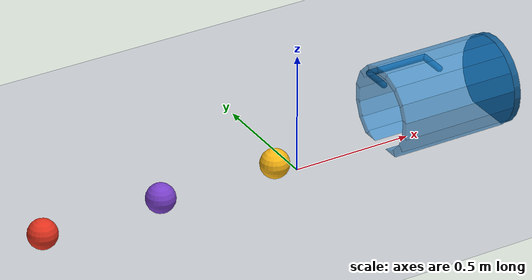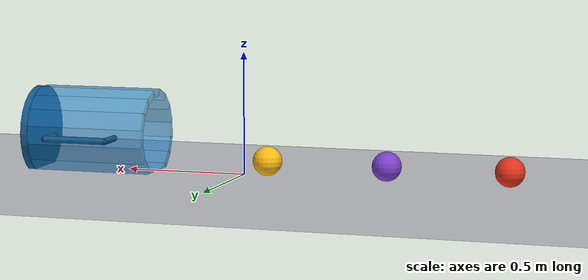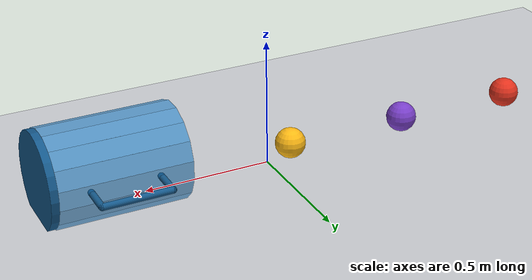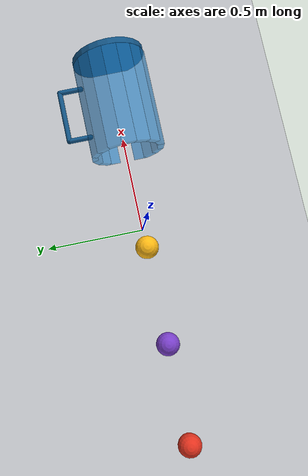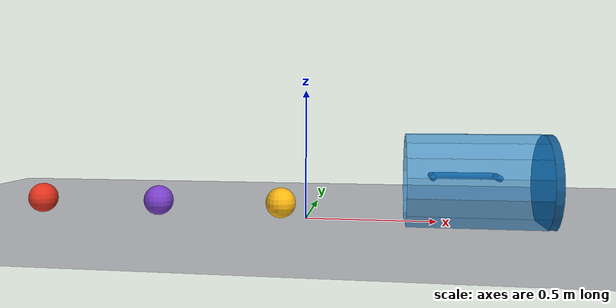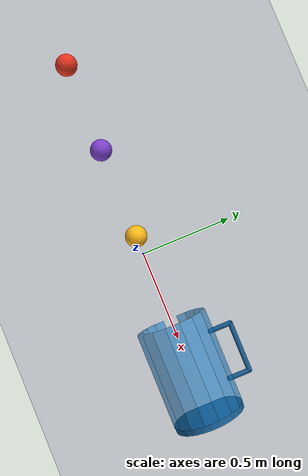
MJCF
<mujoco model="three_balls_into_cup">
  <compiler angle="degree"/>
  <option timestep="0.002" gravity="0 0 -9.81" integrator="implicitfast" cone="elliptic" iterations="100"/>
  <statistic center="-0.15 0 0.12" extent="1.6"/>

  <visual>
    <global offwidth="1280" offheight="720"/>
    <headlight ambient="0.35 0.35 0.35" diffuse="0.65 0.65 0.65" specular="0.2 0.2 0.2"/>
  </visual>

  <worldbody>
    <light name="key_light" pos="-1 -2 3" dir="0 0 -1" diffuse="0.8 0.8 0.8"/>
    <camera name="overview" pos="-0.3 -2.8 1.65" xyaxes="1 0 0 0 0.47 0.883" fovy="40"/>
    <geom name="floor" type="plane" pos="0 0 0" size="3 2 0.1" rgba="0.78 0.79 0.81 1" condim="6" priority="1" friction="0.6 0.001 0.002" solref="0.006 1"/>

    <body name="ball1" pos="-1.1 0 0.0602">
      <freejoint name="ball1_free"/>
      <geom name="ball1_sphere" type="sphere" size="0.06" mass="0.15" rgba="0.9 0.2 0.12 1" condim="3" friction="0.02 0.001 0.0001" solref="0.02 0.15" solimp="0.95 0.99 0.001"/>
    </body>

    <body name="ball2" pos="-0.6 0 0.0602">
      <freejoint name="ball2_free"/>
      <geom name="ball2_sphere" type="sphere" size="0.06" mass="0.15" rgba="0.48 0.25 0.8 1" condim="3" friction="0.02 0.001 0.0001" solref="0.02 0.15" solimp="0.95 0.99 0.001"/>
    </body>

    <body name="ball3" pos="-0.1 0 0.0602">
      <freejoint name="ball3_free"/>
      <geom name="ball3_sphere" type="sphere" size="0.06" mass="0.15" rgba="1 0.73 0.08 1" condim="3" friction="0.02 0.001 0.0001" solref="0.02 0.15" solimp="0.95 0.99 0.001"/>
    </body>

    <!-- Local +z points toward the mouth; the body rotation points it toward world -x. -->
    <!-- The lowest inner wall lies just below the floor, leaving a level entrance. -->
    <body name="cup" pos="0.63 0 0.15" euler="0 -90 0">
      <geom name="cup_base" type="cylinder" pos="0 0 -0.265" size="0.185 0.015" rgba="0.08 0.35 0.55 1" priority="2" condim="6" friction="1 0.005 0.02" solref="0.006 1"/>

      <geom name="cup_wall00" type="box" pos="0.17 0 0" euler="0 0 0" size="0.015 0.037 0.25" rgba="0.1 0.5 0.8 0.6" priority="2" condim="6" friction="1 0.005 0.02" solref="0.006 1"/>
      <geom name="cup_wall01" type="box" pos="0.157060 0.065056 0" euler="0 0 22.5" size="0.015 0.037 0.25" rgba="0.1 0.5 0.8 0.6" priority="2" condim="6" friction="1 0.005 0.02" solref="0.006 1"/>
      <geom name="cup_wall02" type="box" pos="0.120208 0.120208 0" euler="0 0 45" size="0.015 0.037 0.25" rgba="0.1 0.5 0.8 0.6" priority="2" condim="6" friction="1 0.005 0.02" solref="0.006 1"/>
      <geom name="cup_wall03" type="box" pos="0.065056 0.157060 0" euler="0 0 67.5" size="0.015 0.037 0.25" rgba="0.1 0.5 0.8 0.6" priority="2" condim="6" friction="1 0.005 0.02" solref="0.006 1"/>
      <geom name="cup_wall04" type="box" pos="0 0.17 0" euler="0 0 90" size="0.015 0.037 0.25" rgba="0.1 0.5 0.8 0.6" priority="2" condim="6" friction="1 0.005 0.02" solref="0.006 1"/>
      <geom name="cup_wall05" type="box" pos="-0.065056 0.157060 0" euler="0 0 112.5" size="0.015 0.037 0.25" rgba="0.1 0.5 0.8 0.6" priority="2" condim="6" friction="1 0.005 0.02" solref="0.006 1"/>
      <geom name="cup_wall06" type="box" pos="-0.120208 0.120208 0" euler="0 0 135" size="0.015 0.037 0.25" rgba="0.1 0.5 0.8 0.6" priority="2" condim="6" friction="1 0.005 0.02" solref="0.006 1"/>
      <geom name="cup_wall07" type="box" pos="-0.157060 0.065056 0" euler="0 0 157.5" size="0.015 0.037 0.25" rgba="0.1 0.5 0.8 0.6" priority="2" condim="6" friction="1 0.005 0.02" solref="0.006 1"/>
      <geom name="cup_wall08" type="box" pos="-0.17 0 0" euler="0 0 180" size="0.015 0.037 0.25" rgba="0.1 0.5 0.8 0.6" priority="2" condim="6" friction="1 0.005 0.02" solref="0.006 1"/>
      <geom name="cup_wall09" type="box" pos="-0.157060 -0.065056 0" euler="0 0 202.5" size="0.015 0.037 0.25" rgba="0.1 0.5 0.8 0.6" priority="2" condim="6" friction="1 0.005 0.02" solref="0.006 1"/>
      <geom name="cup_wall10" type="box" pos="-0.120208 -0.120208 0" euler="0 0 225" size="0.015 0.037 0.25" rgba="0.1 0.5 0.8 0.6" priority="2" condim="6" friction="1 0.005 0.02" solref="0.006 1"/>
      <geom name="cup_wall11" type="box" pos="-0.065056 -0.157060 0" euler="0 0 247.5" size="0.015 0.037 0.25" rgba="0.1 0.5 0.8 0.6" priority="2" condim="6" friction="1 0.005 0.02" solref="0.006 1"/>
      <geom name="cup_wall12" type="box" pos="0 -0.17 0" euler="0 0 270" size="0.015 0.037 0.25" rgba="0.1 0.5 0.8 0.6" priority="2" condim="6" friction="1 0.005 0.02" solref="0.006 1"/>
      <geom name="cup_wall13" type="box" pos="0.065056 -0.157060 0" euler="0 0 292.5" size="0.015 0.037 0.25" rgba="0.1 0.5 0.8 0.6" priority="2" condim="6" friction="1 0.005 0.02" solref="0.006 1"/>
      <geom name="cup_wall14" type="box" pos="0.120208 -0.120208 0" euler="0 0 315" size="0.015 0.037 0.25" rgba="0.1 0.5 0.8 0.6" priority="2" condim="6" friction="1 0.005 0.02" solref="0.006 1"/>
      <geom name="cup_wall15" type="box" pos="0.157060 -0.065056 0" euler="0 0 337.5" size="0.015 0.037 0.25" rgba="0.1 0.5 0.8 0.6" priority="2" condim="6" friction="1 0.005 0.02" solref="0.006 1"/>

      <geom name="cup_handle_back" type="capsule" fromto="0 0.17 -0.13 0 0.28 -0.13" size="0.013" rgba="0.08 0.35 0.55 1" priority="2" friction="1 0.005 0.02" solref="0.006 1"/>
      <geom name="cup_handle_outer" type="capsule" fromto="0 0.28 -0.13 0 0.28 0.13" size="0.013" rgba="0.08 0.35 0.55 1" priority="2" friction="1 0.005 0.02" solref="0.006 1"/>
      <geom name="cup_handle_front" type="capsule" fromto="0 0.28 0.13 0 0.17 0.13" size="0.013" rgba="0.08 0.35 0.55 1" priority="2" friction="1 0.005 0.02" solref="0.006 1"/>
    </body>
  </worldbody>

  <contact>
    <pair name="ball1_floor_contact" geom1="ball1_sphere" geom2="floor" condim="6" friction="0.6 0.6 0.001 0.010 0.010" solref="0.006 1" solimp="0.95 0.99 0.001"/>
    <pair name="ball2_floor_contact" geom1="ball2_sphere" geom2="floor" condim="6" friction="0.6 0.6 0.001 0.007 0.007" solref="0.006 1" solimp="0.95 0.99 0.001"/>
    <pair name="ball3_floor_contact" geom1="ball3_sphere" geom2="floor" condim="6" friction="0.6 0.6 0.001 0.002 0.002" solref="0.006 1" solimp="0.95 0.99 0.001"/>
  </contact>

  <keyframe>
    <key name="start" qpos="-1.1 0 0.0602 1 0 0 0  -0.6 0 0.0602 1 0 0 0  -0.1 0 0.0602 1 0 0 0" qvel="3.8 0 0 0 63.333333 0  0 0 0 0 0 0  0 0 0 0 0 0"/>
  </keyframe>
</mujoco>
